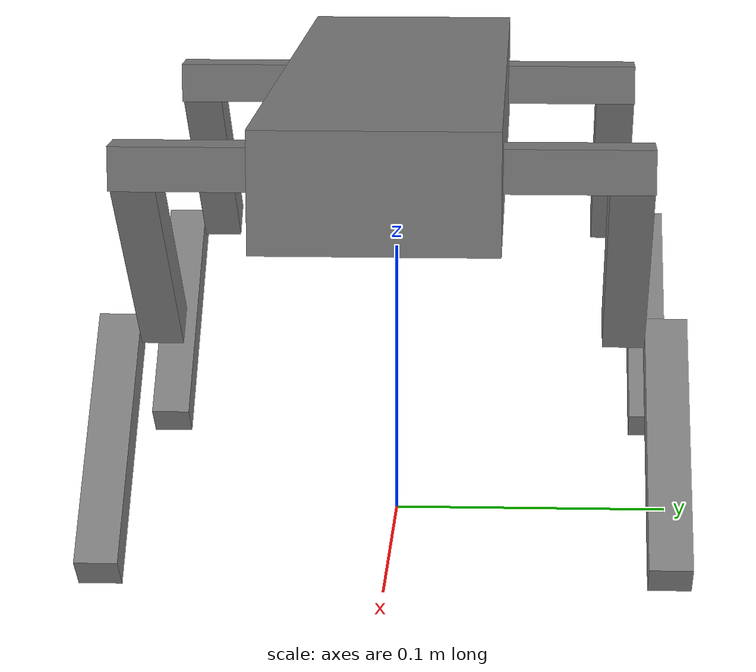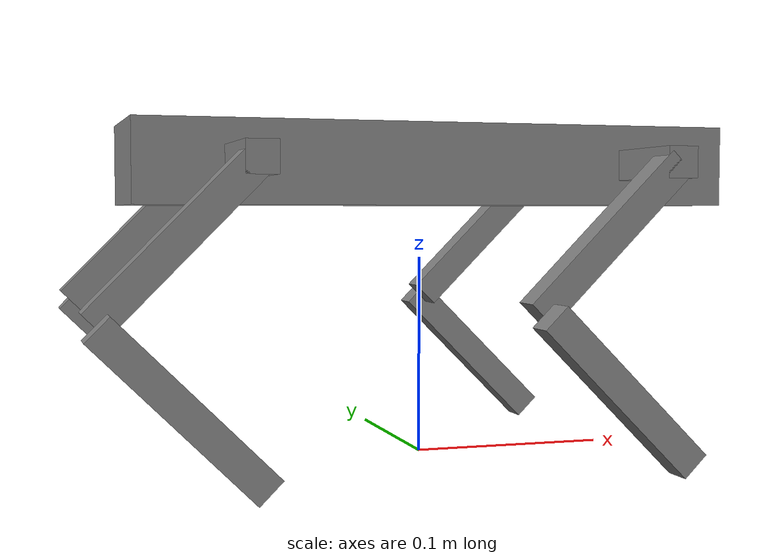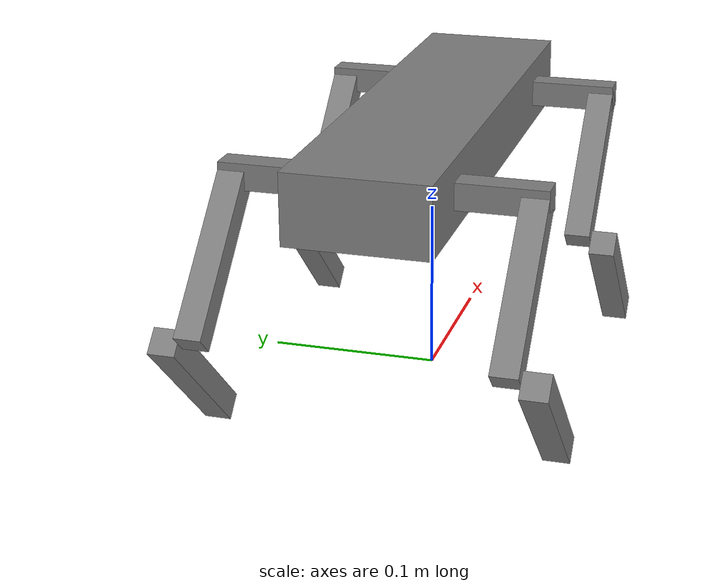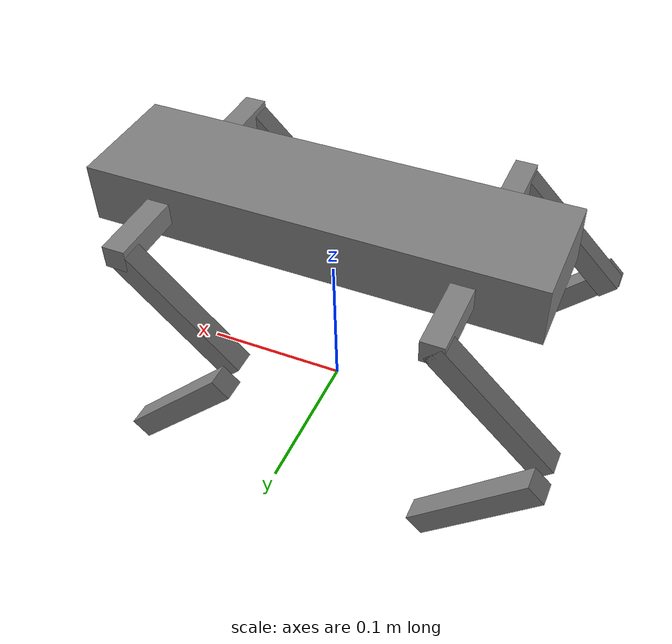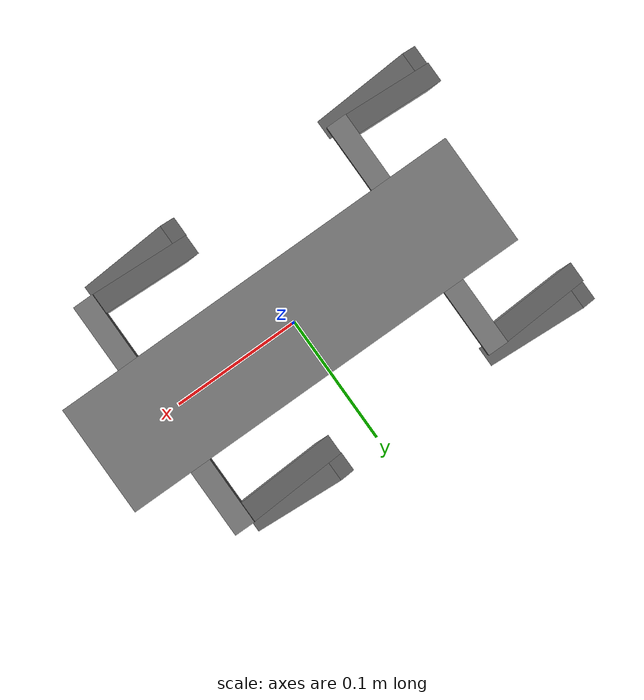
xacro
<?xml version="1.0"?>
<robot name="quadruped_robot" xmlns:xacro="http://ros.org/wiki/xacro">
  <material name="gray">
    <color rgba="0.5 0.5 0.5 2.5"/>
  </material>

  <!-- base -->
  <link name="base_link"/>

  <!-- body -->
  <joint name="base_joint" type="fixed">
    <parent link="base_link"/>
    <child  link="body_link"/>
    <origin xyz="0 0 0" rpy="0 0 0"/>
  </joint>

  <link name="body_link">
    <inertial>
      <origin xyz="0 0 ${0.1*sqrt(2)+0.0075*(1/sqrt(2))}" rpy="0 0 0"/>
      <mass value="1.0"/>
      <inertia ixx="0.00043333333" ixy="0.0" ixz="0.0" iyy="0.00763333333" iyz="0.0" izz="0.0078"/>
    </inertial>
    <visual>
      <origin xyz="0 0 ${0.1*sqrt(2)+0.0075*(1/sqrt(2))}" rpy="0 0 0" />
      <geometry>
        <box size="0.3 0.08 0.04" />
      </geometry>
      <material name="gray" />
    </visual>
    <collision>
      <origin xyz="0 0 ${0.1*sqrt(2)+0.0075*(1/sqrt(2))}" rpy="0 0 0" />
      <geometry>
        <box size="0.3 0.06 0.04" />
      </geometry>
    </collision>
  </link>

  <gazebo reference="body_link">
    <material>Gazebo/Orange</material>
  </gazebo>

  <!-- left_legs macro -->
  <xacro:macro name="left_legs_macro" params="prefix xyz1 effort velocity">

  <!-- left leg shoulder -->
  <joint name="${prefix}_shoulder_joint" type="revolute">
    <origin xyz="${xyz1}" rpy="0 ${radians(-90)} 0"/>
    <parent link="body_link"/>
    <child  link="${prefix}_shoulder_link"/>
    <axis xyz="0 0 1"/>
    <limit lower="-1" upper="1.5" effort="${effort}" velocity="${velocity}"/>
  </joint>

  <transmission name="${prefix}_shoulder_trans">
    <type>transmission_interface/SimpleTransmission</type>
    <joint name="${prefix}_shoulder_joint">
      <hardwareInterface>hardware_interface/EffortJointInterface</hardwareInterface>
    </joint>
    <actuator name="${prefix}_shoulder_motor">
      <hardwareInterface>hardware_interface/EffortJointInterface</hardwareInterface>
      <mechanismReduction>1</mechanismReduction>
    </actuator>
  </transmission>

  <link name="${prefix}_shoulder_link">
    <inertial>
      <origin xyz="0 0.025 0" rpy="0 0 0"/>
      <mass value="0.1"/>
      <inertia ixx="0.00001208333" ixy="0.0" ixz="0.0" iyy="0.00000375" iyz="0.0" izz="0.00001208333"/>
    </inertial>
    <visual>
      <origin xyz="0 0.025 0" rpy="0 0 0" />
      <geometry>
        <box size="0.015 0.05 0.015" />
      </geometry>
      <material name="gray"/>
    </visual>
    <collision>
      <origin xyz="0 0.0175 0" rpy="0 0 0" />
      <geometry>
        <box size="0.015 0.035 0.015" />
      </geometry>
    </collision>
  </link>

  <gazebo reference="${prefix}_shoulder_link">
    <material>Gazebo/DarkGrey</material>
    <mu1>1.0</mu1>
    <mu2>1.0</mu2>
    <maxVel>1.0</maxVel>
    <minDepth>0.001</minDepth>
  </gazebo>

  <!-- left leg upper -->
  <joint name="${prefix}_upper_joint" type="revolute">
    <origin xyz="0 0.0425 0" rpy="${radians(-90)} ${radians(135)} 0"/>
    <parent link="${prefix}_shoulder_link"/>
    <child  link="${prefix}_upper_link"/>
    <axis xyz="0 0 1"/>
    <limit lower="-1.7" upper="0.8" effort="${effort}" velocity="${velocity}"/>
  </joint>

  <transmission name="${prefix}_upper_trans">
    <type>transmission_interface/SimpleTransmission</type>
    <joint name="${prefix}_upper_joint">
      <hardwareInterface>hardware_interface/EffortJointInterface</hardwareInterface>
    </joint>
    <actuator name="${prefix}_upper_motor">
      <hardwareInterface>hardware_interface/EffortJointInterface</hardwareInterface>
      <mechanismReduction>1</mechanismReduction>
    </actuator>
  </transmission>

  <link name="${prefix}_upper_link">
    <inertial>
      <origin xyz="0 0.05 0" rpy="0 0 0"/>
      <mass value="0.1"/>
      <inertia ixx="0.00008496666" ixy="0.0" ixz="0.0" iyy="0.00000350833" iyz="0.0" izz="0.00008520833"/>
    </inertial>
    <visual>
      <origin xyz="0 0.05 0" rpy="0 0 0" />
      <geometry>
        <box size="0.015 0.1 0.015" />
      </geometry>
      <material name="gray"/>
    </visual>
    <collision>
      <origin xyz="0 0.05 0.0005" rpy="0 0 0" />
      <geometry>
        <box size="0.015 0.1 0.014" />
      </geometry>
    </collision>
  </link>

  <gazebo reference="${prefix}_upper_link">
    <material>Gazebo/DarkGrey</material>
    <mu1>1.0</mu1>
    <mu2>1.0</mu2>
    <maxVel>1.0</maxVel>
    <minDepth>0.001</minDepth>
  </gazebo>

  <!-- left leg lower -->
  <joint name="${prefix}_lower_joint" type="revolute">
    <origin xyz="0 0.1 0.015" rpy="0 0 ${radians(-90)}"/>
    <parent link="${prefix}_upper_link"/>
    <child  link="${prefix}_lower_link"/>
    <axis xyz="0 0 1"/>
    <limit lower="-1.6" upper="1.5" effort="${effort}" velocity="${velocity}"/>
  </joint>

  <transmission name="${prefix}_lower_trans">
    <type>transmission_interface/SimpleTransmission</type>
    <joint name="${prefix}_lower_joint">
      <hardwareInterface>hardware_interface/EffortJointInterface</hardwareInterface>
    </joint>
    <actuator name="${prefix}_lower_motor">
      <hardwareInterface>hardware_interface/EffortJointInterface</hardwareInterface>
      <mechanismReduction>1</mechanismReduction>
    </actuator>
  </transmission>

  <link name="${prefix}_lower_link">
    <inertial>
      <origin xyz="0 0.05 0" rpy="0 0 0"/>
      <mass value="0.1"/>
      <inertia ixx="0.00008496666" ixy="0.0" ixz="0.0" iyy="0.00000350833" iyz="0.0" izz="0.00008520833"/>
    </inertial>
    <visual>
      <origin xyz="0 0.05 0" rpy="0 0 0" />
      <geometry>
        <box size="0.015 0.1 0.015" />
      </geometry>
      <material name="gray"/>
    </visual>
    <collision>
      <origin xyz="0 0.05 0.0005" rpy="0 0 0" />
      <geometry>
        <box size="0.015 0.1 0.014" />
      </geometry>
    </collision>
  </link>

  <gazebo reference="${prefix}_lower_link">
    <material>Gazebo/DarkGrey</material>
    <mu1>1.0</mu1>
    <mu2>1.0</mu2>
    <maxVel>1.0</maxVel>
    <minDepth>0.001</minDepth>
  </gazebo>

  </xacro:macro>

  <!-- left legs -->
  <xacro:left_legs_macro prefix="leftfront_leg" xyz1="0.1 0.04 ${0.1*sqrt(2)+0.0075*(1/sqrt(2))}" effort="1.5" velocity="6.17"/>
  <xacro:left_legs_macro prefix="leftback_leg" xyz1="-0.1 0.04 ${0.1*sqrt(2)+0.0075*(1/sqrt(2))}" effort="1.5" velocity="6.17"/>

  <!-- right_legs macro -->
  <xacro:macro name="right_legs_macro" params="prefix xyz1 effort velocity">

  <!-- right leg shoulder -->
  <joint name="${prefix}_shoulder_joint" type="revolute">
    <origin xyz="${xyz1}" rpy="0 ${radians(-90)} 0"/>
    <parent link="body_link"/>
    <child  link="${prefix}_shoulder_link"/>
    <axis xyz="0 0 1"/>
    <limit lower="-1.5" upper="1" effort="${effort}" velocity="${velocity}"/>
  </joint>

  <transmission name="${prefix}_shoulder_trans">
    <type>transmission_interface/SimpleTransmission</type>
    <joint name="${prefix}_shoulder_joint">
      <hardwareInterface>hardware_interface/EffortJointInterface</hardwareInterface>
    </joint>
    <actuator name="${prefix}_shoulder_motor">
      <hardwareInterface>hardware_interface/EffortJointInterface</hardwareInterface>
      <mechanismReduction>1</mechanismReduction>
    </actuator>
  </transmission>

  <link name="${prefix}_shoulder_link">
    <inertial>
      <origin xyz="0 -0.025 0" rpy="0 0 0"/>
      <mass value="0.1"/>
      <inertia ixx="0.00001208333" ixy="0.0" ixz="0.0" iyy="0.00000375" iyz="0.0" izz="0.00001208333"/>
    </inertial>
    <visual>
      <origin xyz="0 -0.025 0" rpy="0 0 0" />
      <geometry>
        <box size="0.015 0.05 0.015" />
      </geometry>
      <material name="gray"/>
    </visual>
    <collision>
      <origin xyz="0 -0.0175 0" rpy="0 0 0" />
      <geometry>
        <box size="0.015 0.035 0.015" />
      </geometry>
    </collision>
  </link>

  <gazebo reference="${prefix}_shoulder_link">
    <material>Gazebo/DarkGrey</material>
    <mu1>1.0</mu1>
    <mu2>1.0</mu2>
    <maxVel>1.0</maxVel>
    <minDepth>0.001</minDepth>
  </gazebo>

  <!-- right leg upper -->
  <joint name="${prefix}_upper_joint" type="revolute">
    <origin xyz="0 -0.0425 0" rpy="${radians(-90)} ${radians(135)} 0"/>
    <parent link="${prefix}_shoulder_link"/>
    <child  link="${prefix}_upper_link"/>
    <axis xyz="0 0 1"/>
    <limit lower="-1.7" upper="0.8" effort="${effort}" velocity="${velocity}"/>
  </joint>

  <transmission name="${prefix}_upper_trans">
    <type>transmission_interface/SimpleTransmission</type>
    <joint name="${prefix}_upper_joint">
      <hardwareInterface>hardware_interface/EffortJointInterface</hardwareInterface>
    </joint>
    <actuator name="${prefix}_upper_motor">
      <hardwareInterface>hardware_interface/EffortJointInterface</hardwareInterface>
      <mechanismReduction>1</mechanismReduction>
    </actuator>
  </transmission>

  <link name="${prefix}_upper_link">
    <inertial>
      <origin xyz="0 0.05 0" rpy="0 0 0"/>
      <mass value="0.1"/>
      <inertia ixx="0.00008496666" ixy="0.0" ixz="0.0" iyy="0.00000350833" iyz="0.0" izz="0.00008520833"/>
    </inertial>
    <visual>
      <origin xyz="0 0.05 0" rpy="0 0 0" />
      <geometry>
        <box size="0.015 0.1 0.015" />
      </geometry>
      <material name="gray"/>
    </visual>
    <collision>
      <origin xyz="0 0.05 -0.0005" rpy="0 0 0" />
      <geometry>
        <box size="0.015 0.1 0.014" />
      </geometry>
    </collision>
  </link>

  <gazebo reference="${prefix}_upper_link">
    <material>Gazebo/DarkGrey</material>
    <mu1>1.0</mu1>
    <mu2>1.0</mu2>
    <maxVel>1.0</maxVel>
    <minDepth>0.001</minDepth>
  </gazebo>

  <!-- right leg lower -->
  <joint name="${prefix}_lower_joint" type="revolute">
    <origin xyz="0 0.1 -0.015" rpy="0 0 ${radians(-90)}"/>
    <parent link="${prefix}_upper_link"/>
    <child  link="${prefix}_lower_link"/>
    <axis xyz="0 0 1"/>
    <limit lower="-1.6" upper="1.5" effort="${effort}" velocity="${velocity}"/>
  </joint>

  <transmission name="${prefix}_lower_trans">
    <type>transmission_interface/SimpleTransmission</type>
    <joint name="${prefix}_lower_joint">
      <hardwareInterface>hardware_interface/EffortJointInterface</hardwareInterface>
    </joint>
    <actuator name="${prefix}_lower_motor">
      <hardwareInterface>hardware_interface/EffortJointInterface</hardwareInterface>
      <mechanismReduction>1</mechanismReduction>
    </actuator>
  </transmission>

  <link name="${prefix}_lower_link">
    <inertial>
      <origin xyz="0 0.05 0" rpy="0 0 0"/>
      <mass value="0.1"/>
      <inertia ixx="0.00008496666" ixy="0.0" ixz="0.0" iyy="0.00000350833" iyz="0.0" izz="0.00008520833"/>
    </inertial>
    <visual>
      <origin xyz="0 0.05 0" rpy="0 0 0" />
      <geometry>
        <box size="0.015 0.1 0.015" />
      </geometry>
      <material name="gray"/>
    </visual>
    <collision>
      <origin xyz="0 0.05 -0.0005" rpy="0 0 0" />
      <geometry>
        <box size="0.015 0.1 0.014" />
      </geometry>
    </collision>
  </link>

  <gazebo reference="${prefix}_lower_link">
    <material>Gazebo/DarkGrey</material>
    <mu1>1.0</mu1>
    <mu2>1.0</mu2>
    <maxVel>1.0</maxVel>
    <minDepth>0.001</minDepth>
  </gazebo>

  </xacro:macro>

  <!-- right legs -->
  <xacro:right_legs_macro prefix="rightfront_leg" xyz1="0.1 -0.04 ${0.1*sqrt(2)+0.0075*(1/sqrt(2))}" effort="1.5" velocity="6.17"/>
  <xacro:right_legs_macro prefix="rightback_leg" xyz1="-0.1 -0.04 ${0.1*sqrt(2)+0.0075*(1/sqrt(2))}" effort="1.5" velocity="6.17"/>

  <!-- gazebo plugin -->
  <gazebo>
    <plugin name="gazebo_ros_control" filename="libgazebo_ros_control.so">
      <robotNamespace>/</robotNamespace>
      <robotSimType>gazebo_ros_control/DefaultRobotHWSim</robotSimType>
      <legacyModeNS>true</legacyModeNS>
    </plugin>
    <plugin name="joint_state_publisher" filename="libgazebo_ros_joint_state_publisher.so">
            <robotNamespace>/</robotNamespace>
            <jointName>leftfront_leg_shoulder_joint, leftback_leg_shoulder_joint, rightfront_leg_shoulder_joint, rightback_leg_shoulder_joint, leftfront_leg_upper_joint, leftback_leg_upper_joint, rightfront_leg_upper_joint, rightback_leg_upper_joint, leftfront_leg_lower_joint, leftback_leg_lower_joint, rightfront_leg_lower_joint, rightback_leg_lower_joint</jointName>
        </plugin>
  </gazebo>

</robot>
